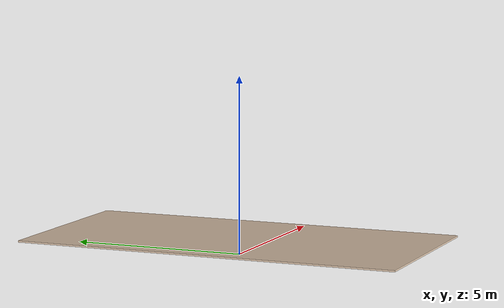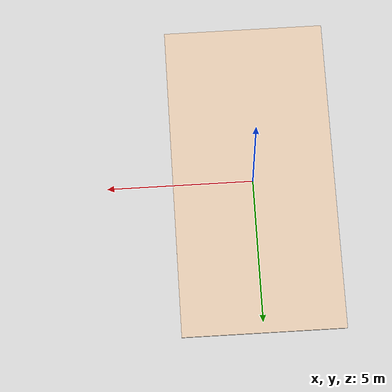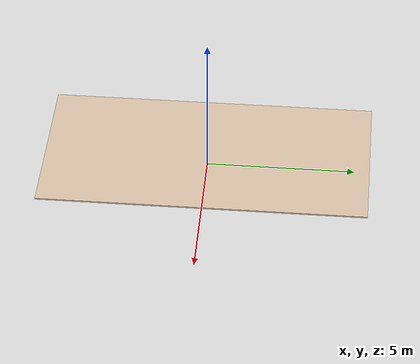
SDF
<?xml version="1.0"?>
<sdf version="1.7">
  <model name="table_top">
    <link name="table_top_link">
      <visual name="visual">
        <pose>0 0 0.445 0 0 0</pose>
        <geometry>
          <box>
            <size>5.5 11.0 0.05</size>
          </box>
        </geometry>
        <material>
         <diffuse>0.9 0.8 0.7 1.0</diffuse>
        </material>
      </visual>
      <collision name="collision">
        <pose>0 0 0.445  0 0 0</pose>
        <geometry>
          <box>
            <size>5.5 11.0 0.05</size>
          </box>
        </geometry>
      </collision>
    </link>

  </model>
</sdf>
